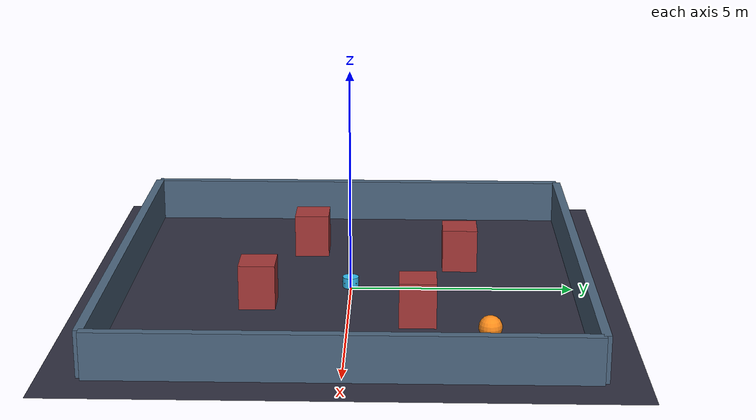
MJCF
<mujoco model="epistemic_arena">

  <compiler angle="radian" autolimits="true"/>

  <option timestep="0.002" gravity="0 0 -9.81" integrator="RK4"/>

  <visual>
    <headlight ambient="0.5 0.5 0.5" diffuse="0.7 0.7 0.7" specular="0.1 0.1 0.1"/>
    <rgba haze="0.15 0.18 0.22 1"/>
  </visual>

  <asset>
    <texture name="grid" type="2d" builtin="checker"
             rgb1="0.15 0.15 0.2" rgb2="0.22 0.22 0.3"
             width="512" height="512"/>
    <material name="floor_mat" texture="grid" texrepeat="8 8" reflectance="0.15"/>
    <material name="wall_mat"  rgba="0.3 0.4 0.5 1"/>
    <material name="agent_mat" rgba="0.2 0.75 0.95 1"/>
    <material name="target_mat" rgba="1.0 0.55 0.1 1"/>
    <material name="obstacle_mat" rgba="0.65 0.22 0.22 1"/>
  </asset>

  <worldbody>

    <!-- Lighting -->
    <light name="sun"  pos="0 0 8"  dir="0 0 -1"
           ambient="0.5 0.5 0.5" diffuse="0.85 0.85 0.8"
           specular="0.2 0.2 0.2" castshadow="true"/>
    <light name="fill" pos="5 -5 5" dir="-1 1 -1"
           ambient="0.1 0.12 0.15" diffuse="0.35 0.38 0.45"
           castshadow="false"/>

    <!-- Floor -->
    <geom name="floor" type="plane" size="6 6 0.1"
          material="floor_mat" condim="3" friction="0.8 0.02 0.001"/>

    <!-- Walls -->
    <geom name="wall_n" type="box" size="5.1 0.1 0.5" pos="0  5.1 0.5" material="wall_mat"/>
    <geom name="wall_s" type="box" size="5.1 0.1 0.5" pos="0 -5.1 0.5" material="wall_mat"/>
    <geom name="wall_e" type="box" size="0.1 5.1 0.5" pos=" 5.1 0 0.5" material="wall_mat"/>
    <geom name="wall_w" type="box" size="0.1 5.1 0.5" pos="-5.1 0 0.5" material="wall_mat"/>

    <!-- Obstacles -->
    <geom name="obs_0" type="box" size="0.4 0.4 0.5" pos=" 2.0  1.5 0.5" material="obstacle_mat"/>
    <geom name="obs_1" type="box" size="0.4 0.4 0.5" pos="-1.5  2.5 0.5" material="obstacle_mat"/>
    <geom name="obs_2" type="box" size="0.4 0.4 0.5" pos=" 1.0 -2.0 0.5" material="obstacle_mat"/>
    <geom name="obs_3" type="box" size="0.4 0.4 0.5" pos="-2.5 -1.0 0.5" material="obstacle_mat"/>

    <!-- Agent -->
    <body name="agent" pos="0 0 0.15">
      <freejoint name="agent_joint"/>
      <geom name="agent_body" type="cylinder" size="0.18 0.12"
            material="agent_mat" mass="1.0" condim="3"/>
      <camera name="agent_cam" pos="0.15 0 0.08" euler="0 0 0" fovy="60"/>
      <camera name="track_agent" pos="0 0 6" euler="0 0 0" mode="trackcom"/>
      <site name="prox_0" pos=" 0.18  0.00 0" size="0.01"/>
      <site name="prox_1" pos=" 0.13  0.13 0" size="0.01"/>
      <site name="prox_2" pos=" 0.00  0.18 0" size="0.01"/>
      <site name="prox_3" pos="-0.13  0.13 0" size="0.01"/>
      <site name="prox_4" pos="-0.18  0.00 0" size="0.01"/>
      <site name="prox_5" pos="-0.13 -0.13 0" size="0.01"/>
      <site name="prox_6" pos=" 0.00 -0.18 0" size="0.01"/>
      <site name="prox_7" pos=" 0.13 -0.13 0" size="0.01"/>
    </body>

    <!-- Sound target -->
    <body name="target" pos="3.0 3.0 0.3">
      <geom name="target_geom" type="sphere" size="0.25"
            material="target_mat" mass="0.01" contype="0" conaffinity="0"/>
    </body>

  </worldbody>

  <actuator>
    <velocity name="left_wheel"  joint="agent_joint" gear="1 0 0 0 0 0" kv="5"/>
    <velocity name="right_wheel" joint="agent_joint" gear="1 0 0 0 0 0" kv="5"/>
  </actuator>

  <sensor>
    <accelerometer name="agent_accel" site="prox_0"/>
    <gyro          name="agent_gyro"  site="prox_0"/>
  </sensor>

</mujoco>
